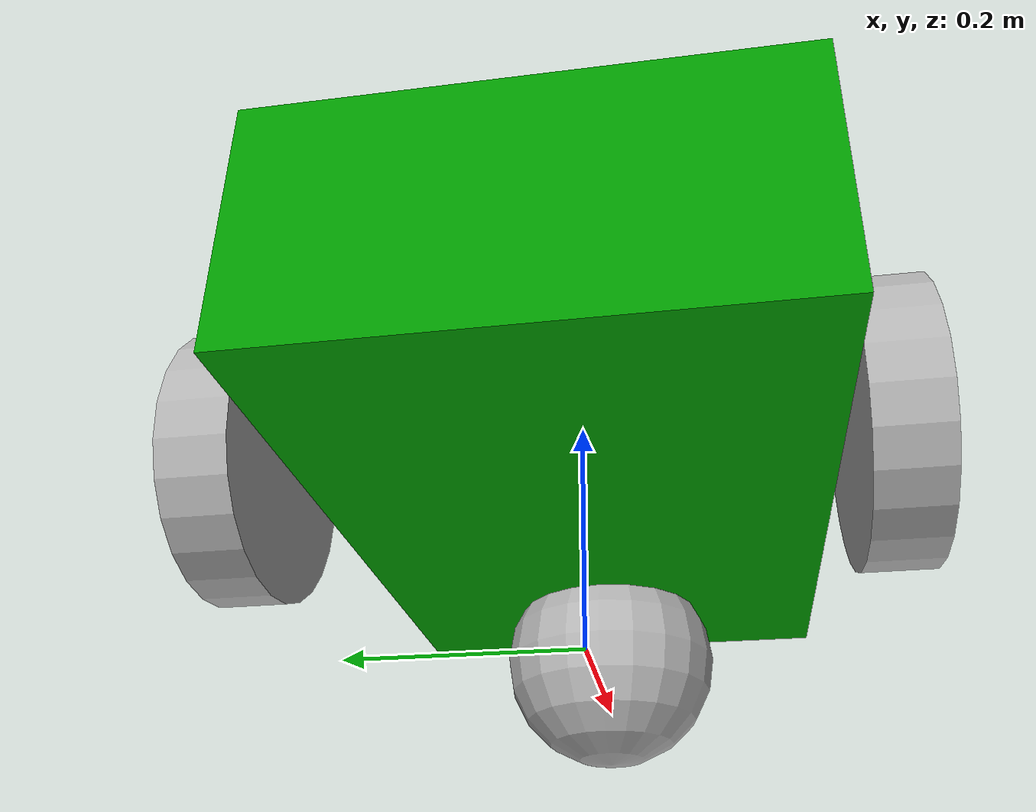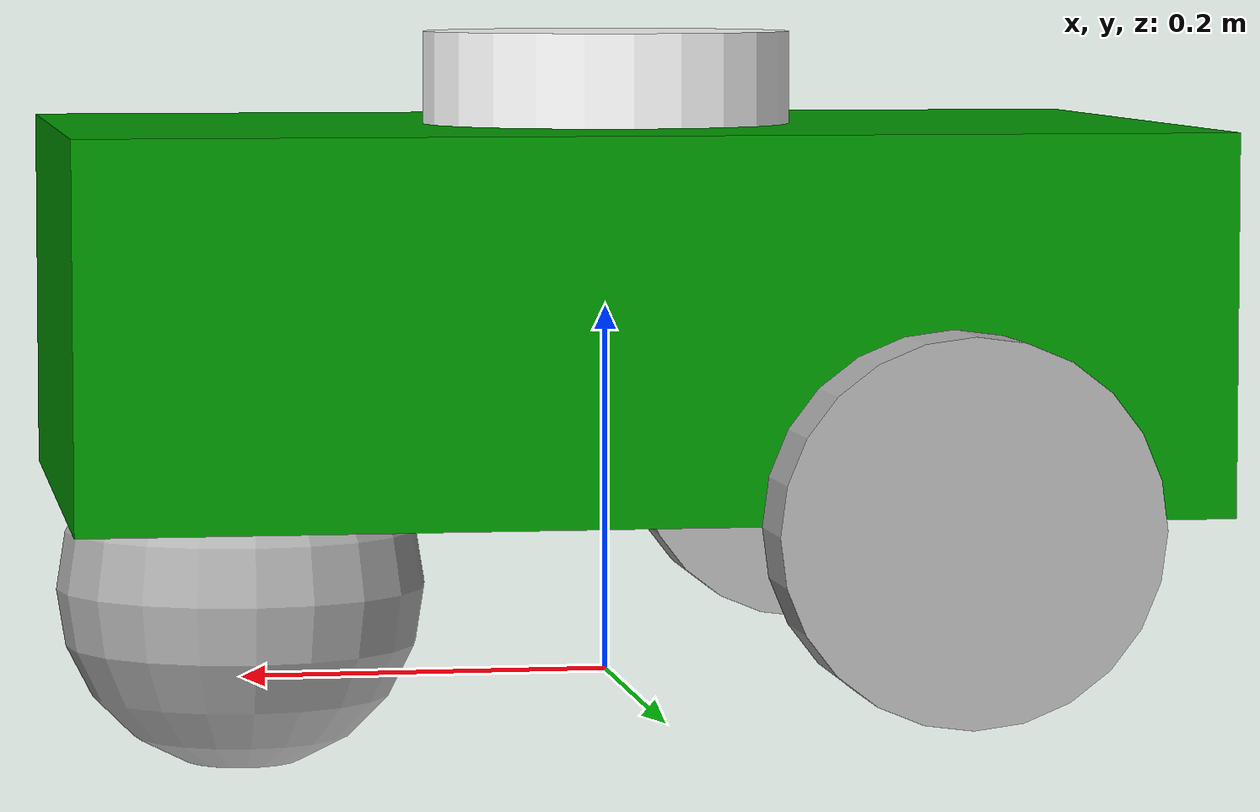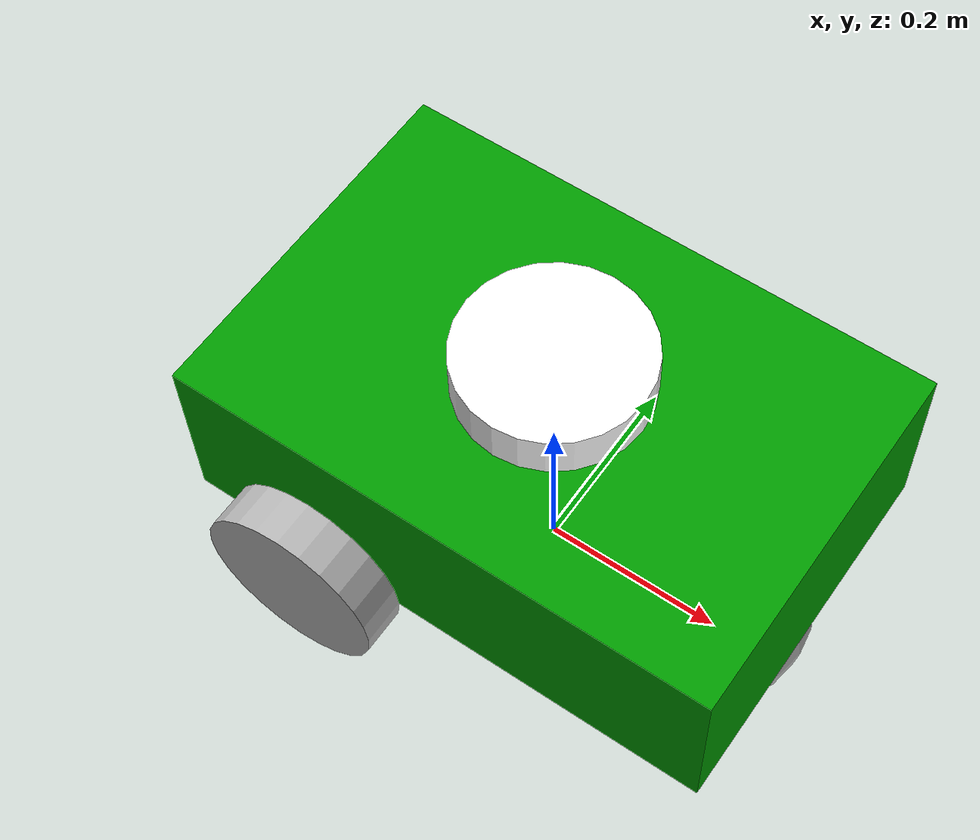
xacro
<?xml version="1.0"?>
<robot xmlns:xacro="http://www.ros.org/wiki/xacro" name="my_robot">

    <!-- Other xacro files -->
    <xacro:include filename="materials.urdf.xacro" />
    <xacro:include filename="inertia.urdf.xacro" />

    <!-- Xacro properties -->
    <xacro:property name="radius" value="0.1" />
    <xacro:property name="length" value="0.05" />

    <!-- Xacro links -->
    <xacro:macro name="wheels" params="prefix">
        <link name="${prefix}_wheel_link">
            <visual>
                <geometry>
                    <cylinder radius="${radius}" length="${length}" />
                </geometry>
                <origin xyz="0 0 0" rpy="1.57 0 0" />
                <material name="grey" />
            </visual>

            <collision>
                <geometry>
                    <cylinder radius="${radius}" length="${length}" />
                </geometry>
                <origin xyz="0 0 0" rpy="1.57 0 0" />
            </collision>

            <xacro:cylinder_inertia mass="0.5" radius="${radius}" length="${length}"/>
        </link>
    </xacro:macro>

    <!-- Xacro joints -->
    <xacro:macro name="fixed_joint" params="prefix parent child xyz rpy">
        <joint name="${prefix}_joint" type="fixed">
            <parent link="${parent}" />
            <child link="${child}" />
            <origin xyz="${xyz}" rpy="${rpy}" />
        </joint>
    </xacro:macro>

    <xacro:macro name="continuous_joint" params="prefix parent child xyz rpy axis">
        <joint name="${prefix}_joint" type="continuous">
            <parent link="${parent}" />
            <child link="${child}" />
            <origin xyz="${xyz}" rpy="${rpy}" />
            <axis xyz="${axis}" />
        </joint>
    </xacro:macro>

    <!-- Links Section -->
    <link name="base_link" />
    <link name="main_body_link">
        <visual>
            <geometry>
                <box size="0.6 0.4 0.2" />
            </geometry>
            <origin xyz="0 0 0.1" rpy="0 0 0" />
            <material name="green" />
        </visual>
        <collision>
            <geometry>
                <box size="0.6 0.4 0.2" />
            </geometry>
            <origin xyz="0 0 0.1" rpy="0 0 0" />
        </collision>
        <xacro:box_inertia mass="5" x="0.6" y="0.4" z="0.2"/>
    </link>

    <link name="lidar_link">
        <visual>
            <geometry>
                <cylinder radius="${radius}" length="${length}" />
            </geometry>
            <origin xyz="0 0 0" rpy="0 0 0" />
            <material name="white" />
        </visual>
    </link>

    <link name="caster_wheel_link">
        <visual>
            <geometry>
                <sphere radius="${radius}" />
            </geometry>
            <origin xyz="0 0 0" rpy="0 0 0" />
            <material name="grey" />
        </visual>
        <collision>
            <geometry>
                <sphere radius="${radius}" />
            </geometry>
            <origin xyz="0 0 0" rpy="0 0 0" />
        </collision>
        <xacro:sphere_inertia mass="0.2" radius="0.1"/>
    </link>
    <xacro:wheels prefix="left" />
    <xacro:wheels prefix="right" />

    <!-- Joints Section-->
    <xacro:fixed_joint prefix="base" parent="base_link" child="main_body_link" xyz="0 0 0.1" rpy="0 0 0"/>
    <xacro:fixed_joint prefix="base_lidar" parent="main_body_link" child="lidar_link" xyz="0 0 0.225" rpy="0 0 0"/>
    <xacro:fixed_joint prefix="base_caster_wheel" parent="main_body_link" child="caster_wheel_link" xyz="0.2 0 -0.05" rpy="0 0 0" />
    <xacro:continuous_joint prefix="base_left_wheel" parent="main_body_link" child="left_wheel_link" xyz="-0.15 0.225 0" rpy="0 0 0" axis="0 1 0"/>
    <xacro:continuous_joint prefix="base_right_wheel" parent="main_body_link" child="right_wheel_link" xyz="-0.15 -0.225 0" rpy="0 0 0" axis="0 1 0"/>

    <!-- Gazebo Section -->
    <gazebo>
        <plugin
            filename="gz-sim-diff-drive-system"
            name="gz::sim::systems::DiffDrive">

            <left_joint>base_left_wheel_joint</left_joint>
            <right_joint>base_right_wheel_joint</right_joint>

            <wheel_separation>0.45</wheel_separation>
            <wheel_radius>0.1</wheel_radius>

            <topic>cmd_vel</topic>

        </plugin>
    </gazebo>

</robot>

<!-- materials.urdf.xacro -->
<robot xmlns:xacro="http://www.ros.org/wiki/xacro">
    <material name="grey">
        <color rgba="0.7 0.7 0.7 1" />
    </material>

    <material name="green">
        <color rgba="0 0.6 0 1" />
    </material>

    <material name="white">
        <color rgba="1 1 1 1" />
    </material>
</robot>

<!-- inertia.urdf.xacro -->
<robot name="inertial_macros" xmlns:xacro="http://www.ros.org/wiki/xacro">

    <xacro:macro name="box_inertia" params="mass x y z">
        <inertial>
            <mass value="${mass}"/>
            <inertia
                ixx="${(1/12.0) * mass * (y*y + z*z)}"
                ixy="0"
                ixz="0"
                iyy="${(1/12.0) * mass * (x*x + z*z)}"
                iyz="0"
                izz="${(1/12.0) * mass * (x*x + y*y)}"/>
        </inertial>
    </xacro:macro>

    <xacro:macro name="cylinder_inertia" params="mass radius length">
        <inertial>
            <mass value="${mass}"/>
            <inertia
                ixx="${(1/12.0) * mass * (3*radius*radius + length*length)}"
                ixy="0"
                ixz="0"
                iyy="${(1/12.0) * mass * (3*radius*radius + length*length)}"
                iyz="0"
                izz="${0.5 * mass * radius * radius}"/>
        </inertial>
    </xacro:macro>

    <xacro:macro name="sphere_inertia" params="mass radius">
        <inertial>
            <mass value="${mass}"/>
            <inertia
                ixx="${(2/5.0) * mass * radius * radius}"
                ixy="0"
                ixz="0"
                iyy="${(2/5.0) * mass * radius * radius}"
                iyz="0"
                izz="${(2/5.0) * mass * radius * radius}"/>
        </inertial>
    </xacro:macro>

</robot>
